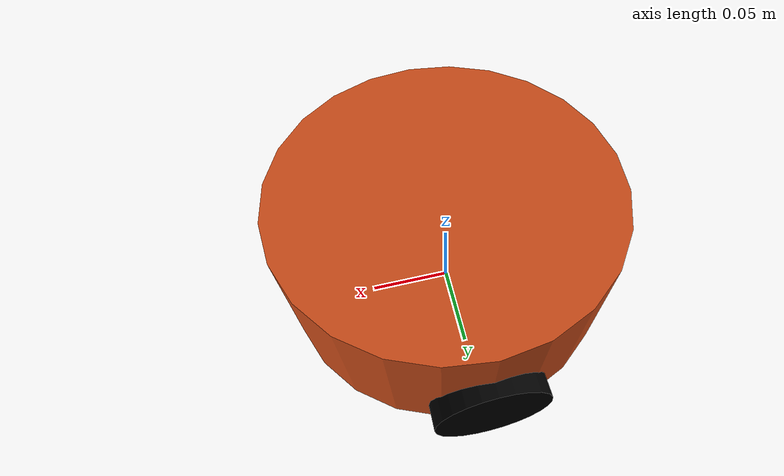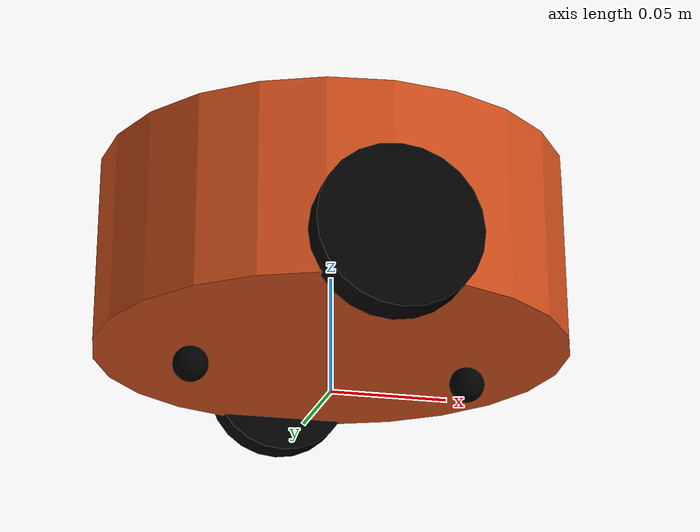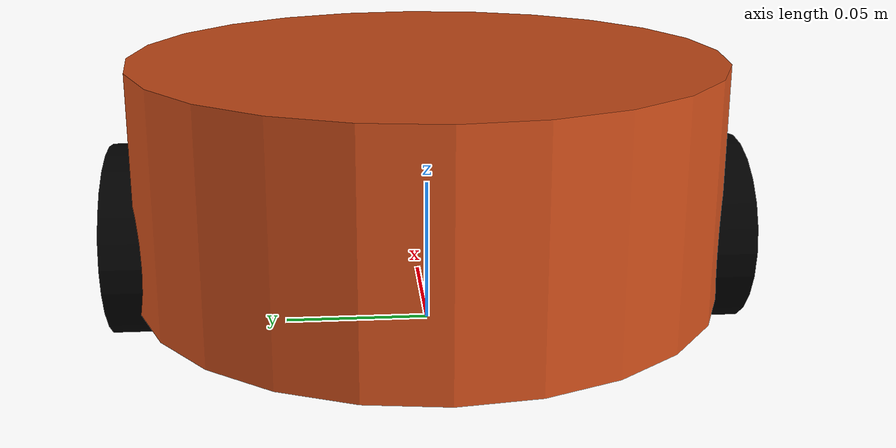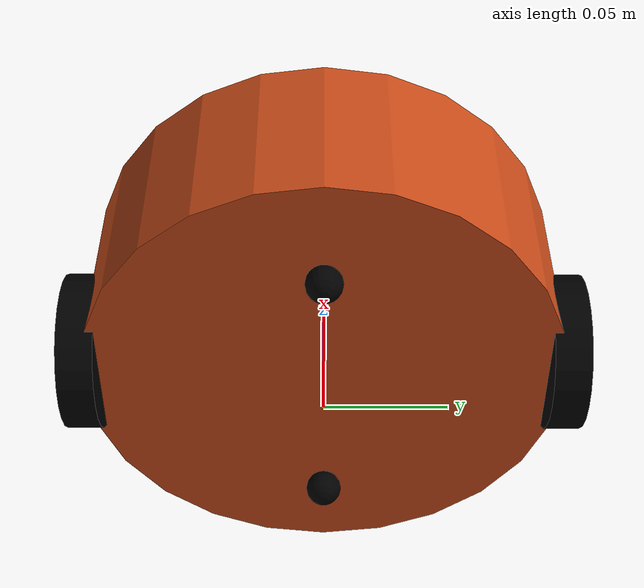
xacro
<robot name="car_base" xmlns:xacro="http://www.ros.org/wiki/xacro">

    <xacro:property name="PI" value="3.141592653589793"/>

    <material name="black">
        <color rgba="0.0 0.0 0.0 1.0" />
    </material>
    <material name="yellow_vis">
      <color rgba="0.8 0.3 0.1 1.0" />
    </material>

    <xacro:property name="base_footprint_radius" value="0.001" />
    <xacro:property name="base_link_radius" value="0.1" />
    <xacro:property name="base_link_length" value="0.08" />
    <xacro:property name="earth_space" value="0.015" />
    <xacro:property name="base_link_m" value="0.5" />

    <link name="base_footprint">
      <visual>
        <geometry>
          <sphere radius="${base_footprint_radius}" />
        </geometry>
      </visual>
    </link>

    <link name="base_link">
      <visual>
        <geometry>
          <cylinder radius="${base_link_radius}" length="${base_link_length}" />
        </geometry>
        <origin xyz="0 0 0" rpy="0 0 0" />
        <material name="yellow_vis"/>
      </visual>
      <collision>
        <geometry>
          <cylinder radius="${base_link_radius}" length="${base_link_length}" />
        </geometry>
        <origin xyz="0 0 0" rpy="0 0 0" />
      </collision>
      <xacro:cylinder_inertial_matrix m="${base_link_m}" r="${base_link_radius}" h="${base_link_length}" />
    </link>

    <gazebo reference="base_link">
        <material>Gazebo/Orange</material>
    </gazebo>

    <joint name="base_link_to_base_footprint" type="fixed">
      <parent link="base_footprint" />
      <child link="base_link" />
      <origin xyz="0 0 ${earth_space + base_link_length / 2 }" />
    </joint>

    <xacro:property name="wheel_radius" value="0.0325" />
    <xacro:property name="wheel_length" value="0.015" />
    <xacro:property name="wheel_m" value="0.05" />

    <xacro:macro name="add_wheels" params="name flag">
      <link name="${name}_wheel">
        <visual>
          <geometry>
            <cylinder radius="${wheel_radius}" length="${wheel_length}" />
          </geometry>
          <origin xyz="0.0 0.0 0.0" rpy="${PI / 2} 0.0 0.0" />
          <material name="black" />
        </visual>
        <collision>
          <geometry>
            <cylinder radius="${wheel_radius}" length="${wheel_length}" />
          </geometry>
          <origin xyz="0.0 0.0 0.0" rpy="${PI / 2} 0.0 0.0" />
        </collision>
        <xacro:cylinder_inertial_matrix m="${wheel_m}" r="${wheel_radius}" h="${wheel_length}" />
      </link>

      <gazebo reference="${name}_wheel">
        <material>Gazebo/Red</material>
        <mu1>1.0</mu1>
        <mu2>1.0</mu2>
        <kp>1000000.0</kp>
        <kd>100.0</kd>
        <minDepth>0.001</minDepth>
        <maxVel>0.1</maxVel>
      </gazebo>

      <joint name="${name}_wheel_to_base_link" type="continuous">
        <parent link="base_link" />
        <child link="${name}_wheel" />
        <origin xyz="0 ${flag * base_link_radius} ${-(base_link_length / 2 + earth_space - wheel_radius) }" />
        <axis xyz="0 1 0" />
      </joint>
    </xacro:macro>
    <xacro:add_wheels name="left" flag="1" />
    <xacro:add_wheels name="right" flag="-1" />

    <xacro:property name="support_wheel_radius" value="0.0075" />
    <xacro:property name="support_wheel_m" value="0.03" />

    <xacro:macro name="add_support_wheel" params="name flag_x_pos" >
      <link name="${name}_support_wheel">
        <visual>
            <geometry>
                <sphere radius="${support_wheel_radius}" />
            </geometry>
            <origin xyz="0 0 0" rpy="0 0 0" />
            <material name="black" />
        </visual>
        <collision>
            <geometry>
                <sphere radius="${support_wheel_radius}" />
            </geometry>
            <origin xyz="0 0 0" rpy="0 0 0" />
        </collision>
        <xacro:sphere_inertial_matrix m="${support_wheel_m}" r="${support_wheel_radius}" />
      </link>

      <gazebo reference="${name}_support_wheel">
        <material>Gazebo/Red</material>
        <mu1>0.1</mu1>
        <mu2>0.1</mu2>
        <kp>1000000.0</kp>
        <kd>100.0</kd>
        <minDepth>0.001</minDepth>
        <maxVel>0.1</maxVel>
      </gazebo>

      <joint name="${name}_support_wheel_to_base_link" type="continuous">
          <parent link="base_link" />
          <child link="${name}_support_wheel" />
          <origin xyz="${flag_x_pos * (base_link_radius - support_wheel_radius*2) } 0 ${-(base_link_length / 2 + earth_space - support_wheel_radius)}" />
          <axis xyz="0 1 0" />
      </joint>
    </xacro:macro>

    <xacro:add_support_wheel name="front" flag_x_pos="0.7" />
    <xacro:add_support_wheel name="back" flag_x_pos="-0.7" />

</robot>
